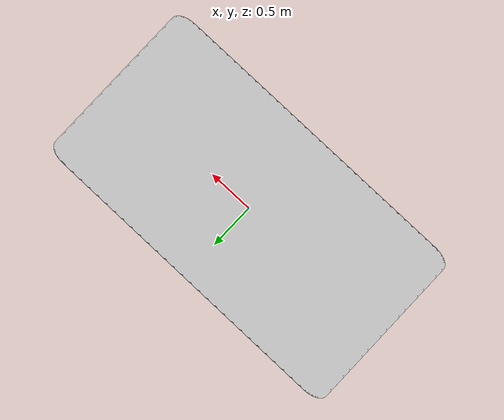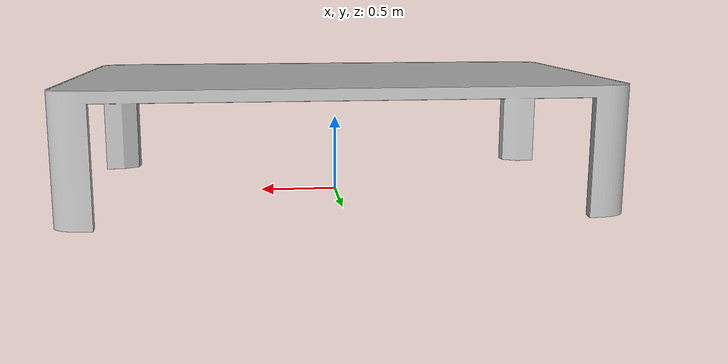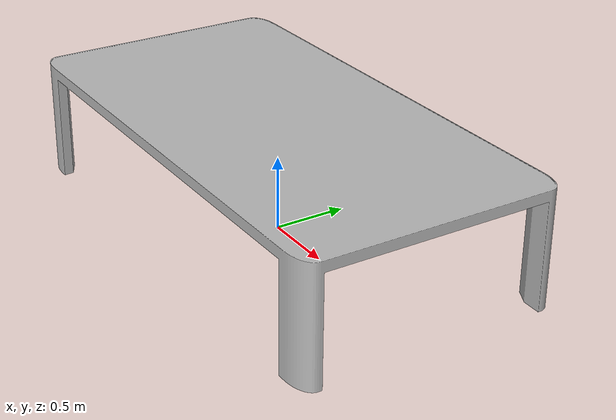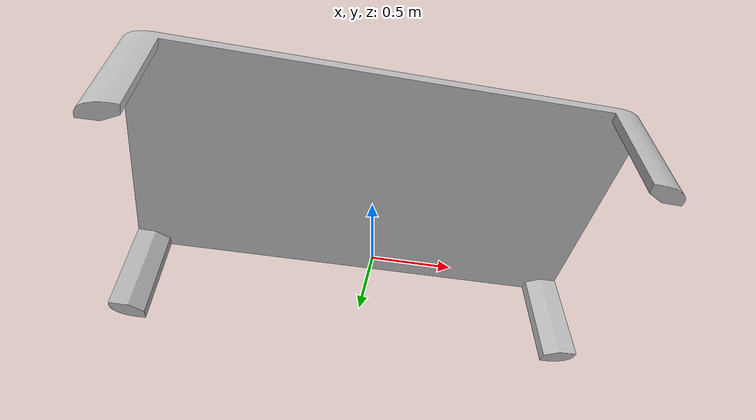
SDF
<?xml version="1.0" ?>
<sdf version="1.6">
  <model name="table_new">
    <static>true</static>
    <link name="link">
      <collision name="collision">
        <geometry>
          <mesh>
            <uri>model://table_new/meshes/table_new.stl</uri>
            <scale>2.5 2.5 2.5</scale>
          </mesh>
        </geometry>
      </collision>
      <visual name="visual">
        <geometry>
          <mesh>
            <uri>model://table_new/meshes/table_new.stl</uri>
            <scale>2.5 2.5 2.5</scale>
          </mesh>
        </geometry>
      </visual>
    </link>
  </model>
</sdf>
